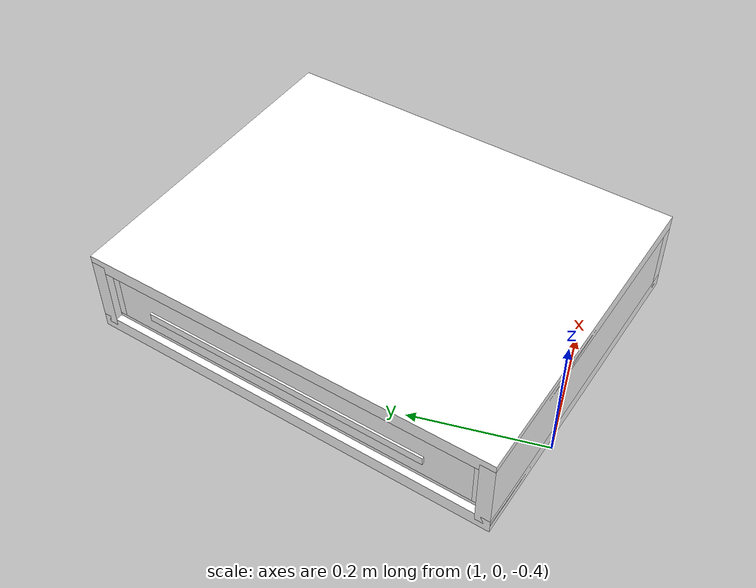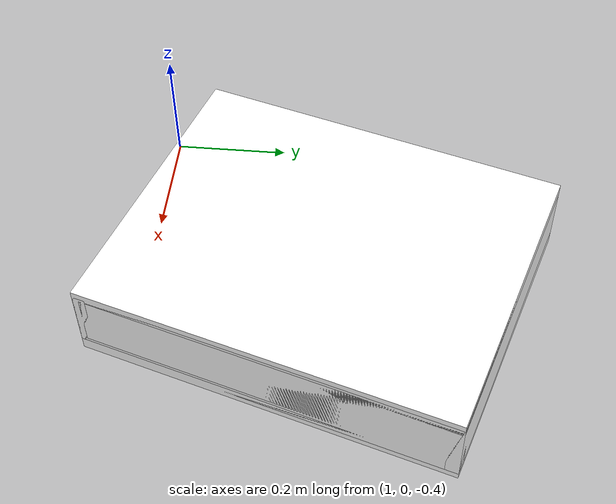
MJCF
<mujoco model="drawer">
        <compiler angle="radian" eulerseq='zxy' />
        <option gravity = "0 0 0" />
        <option>
            <flag contact = "disable"/>
        </option>
        <statistic	extent="1.0" center="0.0 0.0 0.0"/>
        <visual>
            <map fogstart="3" fogend="5" force="0.1" znear=" 0.100000 " zfar=" 12.000000 "/>
        </visual>
        <size njmax="500" nconmax="100" />
        <actuator>
            <velocity joint="drawerJ" name="viva_revolution" kv='10'></velocity>
        </actuator>
        <asset>
            <texture builtin="flat" name="objtex" height="32" width="32" rgb1="1 1 1" type="cube"></texture>
            <texture builtin="flat" name="handletex" height="32" width="32" rgb1="1 1 1" type="cube"></texture>
            <material name="geomObj" shininess="0.03" specular="0.75" texture="objtex"></material>
            <material name="geomHandle" shininess="0.03" specular="0.75" texture="handletex"></material>
        </asset>
        <worldbody>
            <body name="cabinet_bottom" pos= " 1.264310 0.301739 -0.469414 "  quat= " 0.150231 0.000000 0.000000 0.988651" >
                <inertial pos="0 0 0" mass="1" diaginertia="1 1 1" />
                <geom size= " 0.271886 0.339378 0.011849 "  type="box" material="geomObj" name="b"/>
                <body name="cabinet_left" pos= " 0.000000 -0.327529 0.061759 " >
                    <inertial pos="0 0 0" mass="1" diaginertia="1 1 1" />
                    <geom size= " 0.271886 0.011849 0.061759 "  type="box" material="geomObj" name="c" />
                </body>
                <body name="cabinet_right" pos= " 0.000000 0.327529 0.061759 " >
                    <inertial pos="0 0 0" mass="1" diaginertia="1 1 1" />
                    <geom size= " 0.271886 0.011849 0.061759 "  type="box" material="geomObj" name="d" />
                </body>
                <body name="cabinet_top" pos= " 0.000000 0.000000 0.123519 " >
                    <inertial pos="0 0 0" mass="1" diaginertia="1 1 1" />
                    <geom size= " 0.271886 0.339378 0.011849 "  type="box" material="geomObj" name="e"/>
                </body>
                <body name="cabinet_back" pos= " -0.260037 0.000000 0.061759 "  >
                    <inertial pos="0 0 0" mass="1" diaginertia="1 1 1" />
                    <geom size= " 0.011849 0.339378 0.061759 "  type="box" material="geomObj" name="f" />
                </body>
                <body name="drawer" pos= " 0.000000 0.000000 0.005925 "  >
                    <geom size= " 0.260037 0.327529 0.011849 "  type="box" material="geomObj" name="ddddfadfadsfac" />
                    <joint name="drawerJ" pos="0 0 0" axis="1 0 0" type="slide" limited="true" range= "0  0.40782907605171204 "  />
                    <inertial pos="0 0 0" mass="1" diaginertia="1 1 1" />
                    <body name="drawer_left" pos= " 0.000000 -0.315679 0.061759 " >
                        <inertial pos="0 0 0" mass="1" diaginertia="1 1 1" />
                        <geom size= " 0.260037 0.011849 0.049910 "  type="box" material="geomObj" name="ddc" />
                    </body>
                    <body name="drawer_right" pos= " 0.000000 0.315679 0.061759 " >
                        <inertial pos="0 0 0" mass="1" diaginertia="1 1 1" />
                        <geom size= " 0.260037 0.011849 0.049910 "  type="box" material="geomObj" name="dddd" />
                    </body>
                    <body name="drawer_front" pos= " 0.248187 0.000000 0.061759 " >
                        <inertial pos="0 0 0" mass="1" diaginertia="1 1 1" />
                        <geom size= " 0.011849 0.327529 0.049910 "  type="box" material="geomObj" name="eeeee"/>
                    </body>
                    <body name="drawer_back" pos= " -0.260037 0.000000 0.061759 "  >
                        <inertial pos="0 0 0" mass="1" diaginertia="1 1 1" />
                        <geom size= " 0.011849 0.327529 0.049910 "  type="box" material="geomObj" name="fffff" />
                    </body>
                    <body name="knob" pos= " 0.271886 0.000000 0.061759 " >
                        <inertial pos="0 0 0" mass="0.1" diaginertia="0.1 0.1 0.1" />
                        <geom size= " 0.001775 0.234169 0.006778 "  pos="0 0 0" type="box" material="geomHandle" name="handle"/>
                    </body>
                </body>
            </body>
            <body name="external_camera_body_0" pos="0.0 0 0.00">
                <camera euler="-1.57 1.57 0.0" fovy=" 54.280851 " name="external_camera_0" pos="0.0 0 0"></camera>
                <inertial pos= " 0.00 0.0 0.000000 " mass="1" diaginertia="1 1 1" />
                <joint name="cam_j" pos="0.0 0 0" axis = "1 0 0" type="free" />
            </body>
        </worldbody>
    </mujoco>
